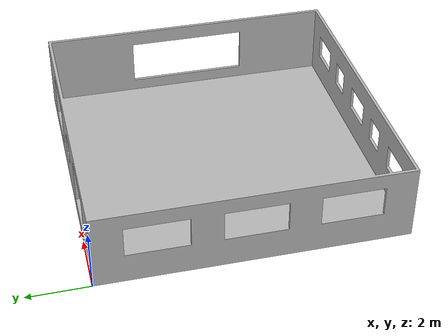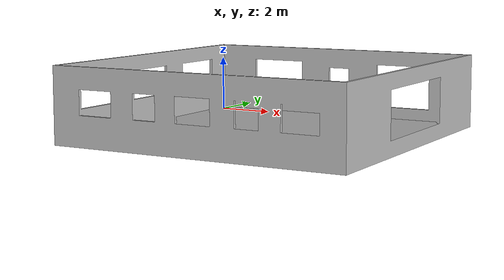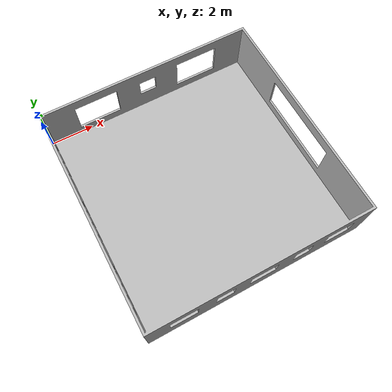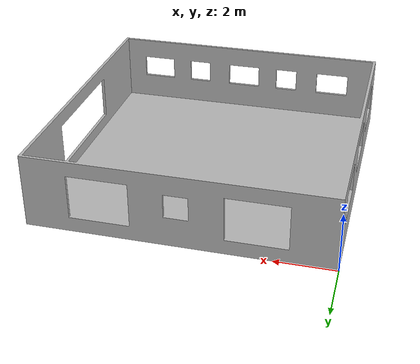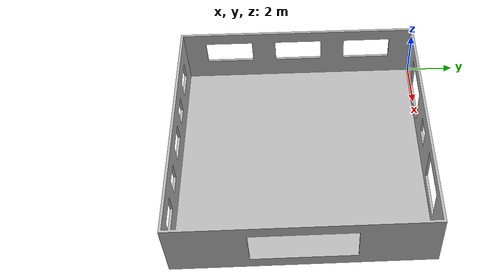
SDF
<?xml version='1.0'?>
<sdf version='1.4'>
  <model name="tower_story">
    <link name="link" >
      <pose>0 0 0.01 1.57079632679 0 0</pose>
      <inertial>
        <mass>1000</mass>
        <inertia>
          <ixx>1000</ixx> <ixy>0.0</ixy> <ixz>0.0</ixz>
          <iyy>1000</iyy> <iyz>0.0</iyz> <izz>2000</izz>
        </inertia>
      </inertial>
      <collision name="collision">
        <geometry>
          <mesh>
            <uri>model://tower_story/room.STL</uri>
            <scale>0.001 0.001 0.001</scale>
          </mesh>
        </geometry>
      </collision>
      <visual name="visual">
        <geometry>
          <mesh>
            <uri>model://tower_story/room.STL</uri>
            <scale>0.001 0.001 0.001</scale>
          </mesh>
        </geometry>
      </visual>
    </link>
  </model>
</sdf>
